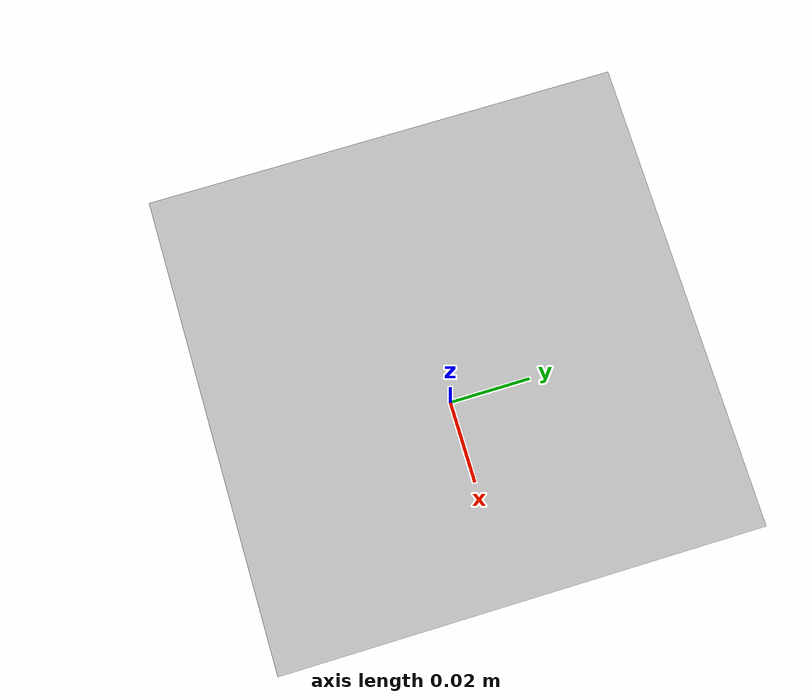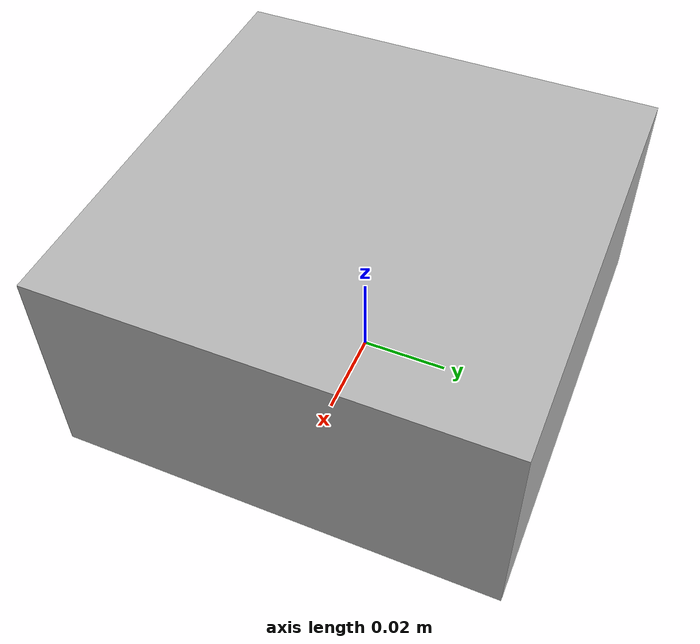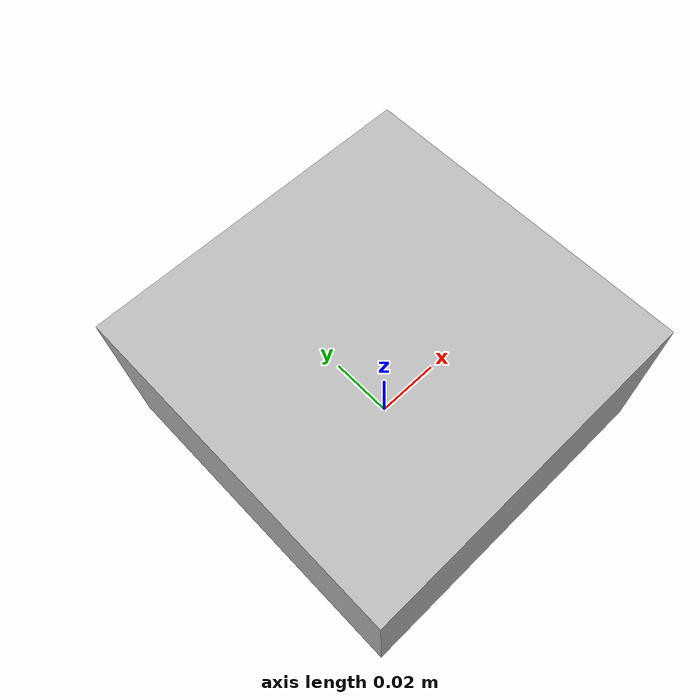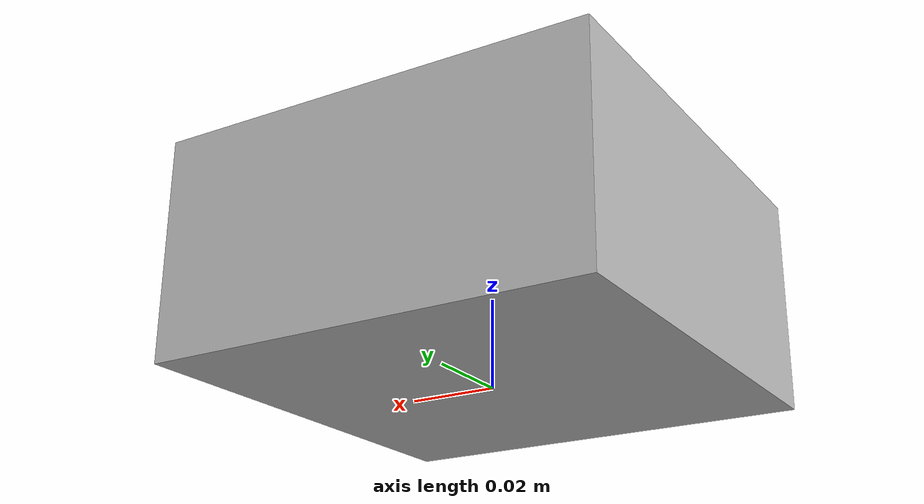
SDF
<?xml version="1.0" ?>
<sdf version="1.6">
  <model name="cardboard_box">
    <pose>0 0 0 0 0 0</pose>
    <link name="link">
      <inertial>
        <mass>0.016</mass> <!-- scaled by roughly 0.2*0.2*0.1 = 0.004 factor of original volume, 2*0.008=0.016 -->
        <inertia>
          <ixx>0.000167</ixx> <!-- original * 0.008 -->
          <ixy>0</ixy>
          <ixz>0</ixz>
          <iyy>0.000227</iyy>
          <iyz>0</iyz>
          <izz>0.000273</izz>
        </inertia>
      </inertial>
      <collision name="collision">
        <pose> 0 0 0.025 0 0 0</pose>
        <geometry>
          <box>
            <size>0.1 0.1 0.05</size>
          </box>
        </geometry>
        <surface>
          <friction>
            <ode>
              <mu>1.0</mu>
              <mu2>1.0</mu2>
            </ode>
          </friction>
          <contact>
            <ode>
              <kp>10000000.0</kp>
              <kd>1.0</kd>
              <min_depth>0.001</min_depth>
              <max_vel>0.1</max_vel>
            </ode>
          </contact>
        </surface>
      </collision>
      <visual name="visual">
        <pose>0 0 0 0 0 0</pose>
        <geometry>
          <mesh>
            <uri>model://cardboard_box/meshes/cardboard_box.dae</uri>
            <scale>0.25 0.25 0.125</scale>
          </mesh>
        </geometry>
      </visual>

    </link>
  </model>
</sdf>
